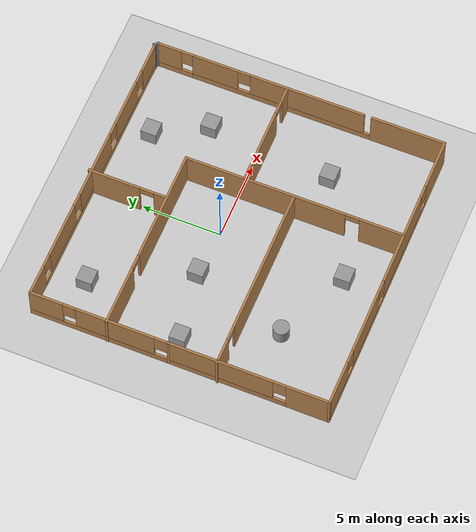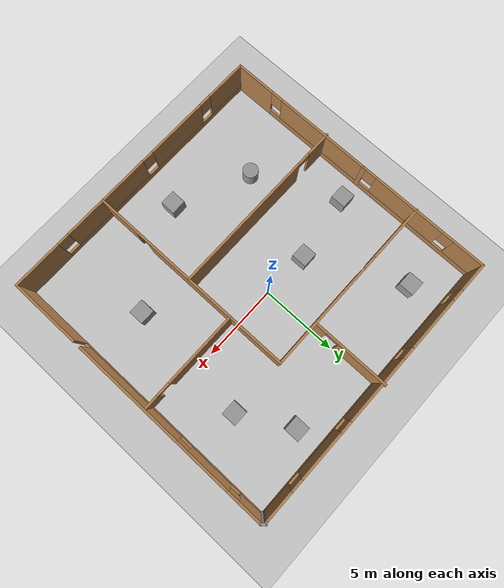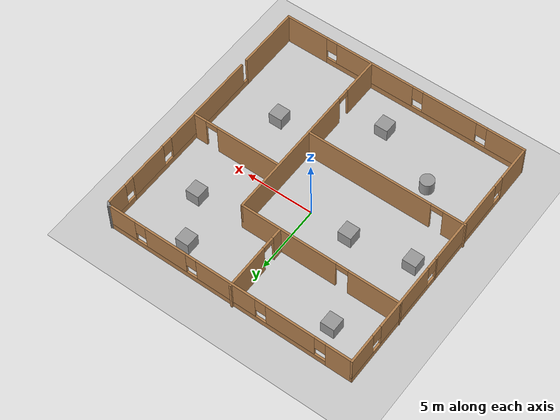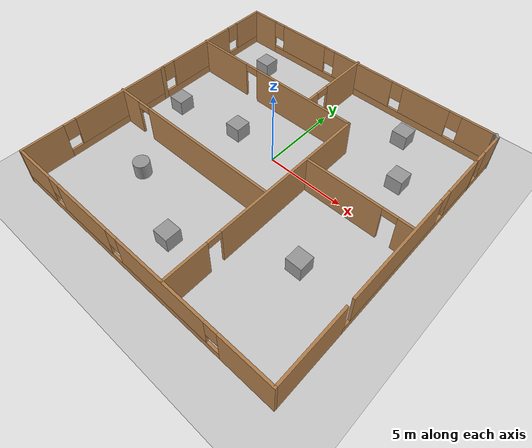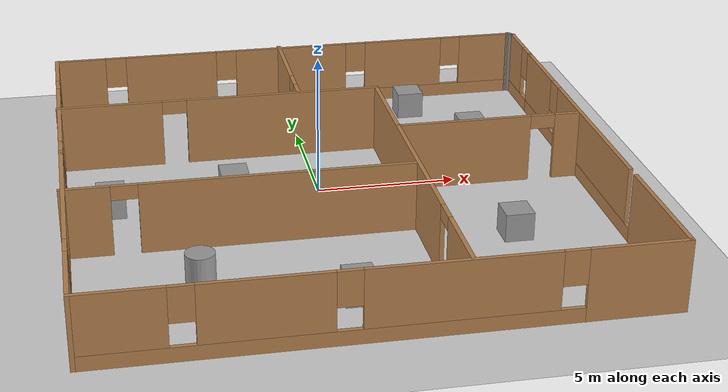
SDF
<sdf version="1.7">
 <world name="default">
  <light name="sun" type="directional">
   <pose>0 0 10 0 -0 0</pose>
   <diffuse>0.8 0.8 0.8 1</diffuse>
   <specular>0.2 0.2 0.2 1</specular>
   <attenuation>
    <range>1000</range>
    <constant>0.9</constant>
    <linear>0.01</linear>
    <quadratic>0.001</quadratic>
   </attenuation>
   <direction>-0.5 0.1 -0.9</direction>
   <spot><inner_angle>0</inner_angle><outer_angle>0</outer_angle><falloff>0</falloff></spot>
  </light>
  <model name="ground_plane">
   <static>1</static>
   <link name="link">
    <collision name="collision">
     <geometry><plane><normal>0 0 1</normal><size>100 100</size></plane></geometry>
     <surface>
      <contact><collide_bitmask>65535</collide_bitmask></contact>
      <friction><ode><mu>100</mu><mu2>50</mu2></ode></friction>
     </surface>
    </collision>
    <visual name="visual">
     <cast_shadows>0</cast_shadows>
     <geometry><plane><normal>0 0 1</normal><size>100 100</size></plane></geometry>
     <material>
      <script><uri>file://media/materials/scripts/gazebo.material</uri><name>Gazebo/Grey</name></script>
     </material>
    </visual>
   </link>
  </model>
  <gravity>0 0 -9.8</gravity>
  <magnetic_field>6e-06 2.3e-05 -4.2e-05</magnetic_field>
  <atmosphere type="adiabatic"/>
  <physics type="ode">
   <max_step_size>0.001</max_step_size>
   <real_time_factor>1</real_time_factor>
   <real_time_update_rate>1000</real_time_update_rate>
  </physics>
  <scene><ambient>0.4 0.4 0.4 1</ambient><background>0.7 0.7 0.7 1</background><shadows>1</shadows></scene>
  <audio><device>default</device></audio>
  <spherical_coordinates>
   <surface_model>EARTH_WGS84</surface_model>
   <latitude_deg>0</latitude_deg>
   <longitude_deg>0</longitude_deg>
   <elevation>0</elevation>
   <heading_deg>0</heading_deg>
  </spherical_coordinates>
  <model name="robotenvironment">
   <pose>0.259533 -1.08047 0 0 -0 0</pose>
   <link name="Wall_12">
    <collision name="Wall_12_Collision">
     <geometry><box><size>4.75 0.15 2.5</size></box></geometry>
     <pose>0 0 1.25 0 -0 0</pose>
    </collision>
    <visual name="Wall_12_Visual">
     <pose>0 0 1.25 0 -0 0</pose>
     <geometry><box><size>4.75 0.15 2.5</size></box></geometry>
     <material>
      <script><uri>file://media/materials/scripts/gazebo.material</uri><name>Gazebo/Wood</name></script>
      <ambient>1 1 1 1</ambient>
     </material>
     <meta><layer>0</layer></meta>
    </visual>
    <pose>9.33013 -7.11239 0 0 -0 -1.5708</pose>
   </link>
   <link name="Wall_13">
    <pose>0.030125 -9.41239 0 0 -0 3.14159</pose>
    <visual name="Wall_13_Visual_0">
     <pose>-7.73036 0 1.25 0 -0 0</pose>
     <geometry><box><size>3.28928 0.15 2.5</size></box></geometry>
     <material>
      <script><uri>file://media/materials/scripts/gazebo.material</uri><name>Gazebo/Wood</name></script>
      <ambient>1 1 1 1</ambient>
     </material>
     <meta><layer>0</layer></meta>
    </visual>
    <collision name="Wall_13_Collision_0">
     <geometry><box><size>3.28928 0.15 2.5</size></box></geometry>
     <pose>-7.73036 0 1.25 0 -0 0</pose>
    </collision>
    <visual name="Wall_13_Visual_1">
     <pose>1.64464 0 0.25 0 -0 0</pose>
     <geometry><box><size>15.4607 0.15 0.5</size></box></geometry>
     <material>
      <script><uri>file://media/materials/scripts/gazebo.material</uri><name>Gazebo/Wood</name></script>
      <ambient>1 1 1 1</ambient>
     </material>
     <meta><layer>0</layer></meta>
    </visual>
    <collision name="Wall_13_Collision_1">
     <geometry><box><size>15.4607 0.15 0.5</size></box></geometry>
     <pose>1.64464 0 0.25 0 -0 0</pose>
    </collision>
    <visual name="Wall_13_Visual_2">
     <pose>-2.24722 0 1.5 0 -0 0</pose>
     <geometry><box><size>6.077 0.15 2</size></box></geometry>
     <material>
      <script><uri>file://media/materials/scripts/gazebo.material</uri><name>Gazebo/Wood</name></script>
      <ambient>1 1 1 1</ambient>
     </material>
     <meta><layer>0</layer></meta>
    </visual>
    <collision name="Wall_13_Collision_2">
     <geometry><box><size>6.077 0.15 2</size></box></geometry>
     <pose>-2.24722 0 1.5 0 -0 0</pose>
    </collision>
    <visual name="Wall_13_Visual_3">
     <pose>3.65113 0 1.5 0 -0 0</pose>
     <geometry><box><size>4.1197 0.15 2</size></box></geometry>
     <material>
      <script><uri>file://media/materials/scripts/gazebo.material</uri><name>Gazebo/Wood</name></script>
      <ambient>1 1 1 1</ambient>
     </material>
     <meta><layer>0</layer></meta>
    </visual>
    <collision name="Wall_13_Collision_3">
     <geometry><box><size>4.1197 0.15 2</size></box></geometry>
     <pose>3.65113 0 1.5 0 -0 0</pose>
    </collision>
    <visual name="Wall_13_Visual_4">
     <pose>7.94299 0 1.5 0 -0 0</pose>
     <geometry><box><size>2.86402 0.15 2</size></box></geometry>
     <material>
      <script><uri>file://media/materials/scripts/gazebo.material</uri><name>Gazebo/Wood</name></script>
      <ambient>1 1 1 1</ambient>
     </material>
     <meta><layer>0</layer></meta>
    </visual>
    <collision name="Wall_13_Collision_4">
     <geometry><box><size>2.86402 0.15 2</size></box></geometry>
     <pose>7.94299 0 1.5 0 -0 0</pose>
    </collision>
    <visual name="Wall_13_Visual_5">
     <pose>-5.68572 0 1.9 0 -0 0</pose>
     <geometry><box><size>0.8 0.15 1.2</size></box></geometry>
     <material>
      <script><uri>file://media/materials/scripts/gazebo.material</uri><name>Gazebo/Wood</name></script>
      <ambient>1 1 1 1</ambient>
     </material>
     <meta><layer>0</layer></meta>
    </visual>
    <collision name="Wall_13_Collision_5">
     <geometry><box><size>0.8 0.15 1.2</size></box></geometry>
     <pose>-5.68572 0 1.9 0 -0 0</pose>
    </collision>
    <visual name="Wall_13_Visual_6">
     <pose>1.19128 0 1.9 0 -0 0</pose>
     <geometry><box><size>0.8 0.15 1.2</size></box></geometry>
     <material>
      <script><uri>file://media/materials/scripts/gazebo.material</uri><name>Gazebo/Wood</name></script>
      <ambient>1 1 1 1</ambient>
     </material>
     <meta><layer>0</layer></meta>
    </visual>
    <collision name="Wall_13_Collision_6">
     <geometry><box><size>0.8 0.15 1.2</size></box></geometry>
     <pose>1.19128 0 1.9 0 -0 0</pose>
    </collision>
    <visual name="Wall_13_Visual_7">
     <pose>6.11098 0 1.9 0 -0 0</pose>
     <geometry><box><size>0.8 0.15 1.2</size></box></geometry>
     <material>
      <script><uri>file://media/materials/scripts/gazebo.material</uri><name>Gazebo/Wood</name></script>
      <ambient>1 1 1 1</ambient>
     </material>
     <meta><layer>0</layer></meta>
    </visual>
    <collision name="Wall_13_Collision_7">
     <geometry><box><size>0.8 0.15 1.2</size></box></geometry>
     <pose>6.11098 0 1.9 0 -0 0</pose>
    </collision>
   </link>
   <link name="Wall_14">
    <pose>-9.26988 -4.48739 0 0 -0 1.5708</pose>
    <visual name="Wall_14_Visual_0">
     <pose>-3.63221 0 1.25 0 -0 0</pose>
     <geometry><box><size>2.73558 0.15 2.5</size></box></geometry>
     <material>
      <script><uri>file://media/materials/scripts/gazebo.material</uri><name>Gazebo/Wood</name></script>
      <ambient>1 1 1 1</ambient>
     </material>
     <meta><layer>0</layer></meta>
    </visual>
    <collision name="Wall_14_Collision_0">
     <geometry><box><size>2.73558 0.15 2.5</size></box></geometry>
     <pose>-3.63221 0 1.25 0 -0 0</pose>
    </collision>
    <visual name="Wall_14_Visual_1">
     <pose>1.36779 0 0.25 0 -0 0</pose>
     <geometry><box><size>7.26442 0.15 0.5</size></box></geometry>
     <material>
      <script><uri>file://media/materials/scripts/gazebo.material</uri><name>Gazebo/Wood</name></script>
      <ambient>1 1 1 1</ambient>
     </material>
     <meta><layer>0</layer></meta>
    </visual>
    <collision name="Wall_14_Collision_1">
     <geometry><box><size>7.26442 0.15 0.5</size></box></geometry>
     <pose>1.36779 0 0.25 0 -0 0</pose>
    </collision>
    <visual name="Wall_14_Visual_2">
     <pose>1.76779 0 1.5 0 -0 0</pose>
     <geometry><box><size>6.46442 0.15 2</size></box></geometry>
     <material>
      <script><uri>file://media/materials/scripts/gazebo.material</uri><name>Gazebo/Wood</name></script>
      <ambient>1 1 1 1</ambient>
     </material>
     <meta><layer>0</layer></meta>
    </visual>
    <collision name="Wall_14_Collision_2">
     <geometry><box><size>6.46442 0.15 2</size></box></geometry>
     <pose>1.76779 0 1.5 0 -0 0</pose>
    </collision>
    <visual name="Wall_14_Visual_3">
     <pose>-1.86442 0 1.9 0 -0 0</pose>
     <geometry><box><size>0.8 0.15 1.2</size></box></geometry>
     <material>
      <script><uri>file://media/materials/scripts/gazebo.material</uri><name>Gazebo/Wood</name></script>
      <ambient>1 1 1 1</ambient>
     </material>
     <meta><layer>0</layer></meta>
    </visual>
    <collision name="Wall_14_Collision_3">
     <geometry><box><size>0.8 0.15 1.2</size></box></geometry>
     <pose>-1.86442 0 1.9 0 -0 0</pose>
    </collision>
   </link>
   <link name="Wall_17">
    <pose>-9.26988 4.86261 0 0 -0 1.5708</pose>
    <visual name="Wall_17_Visual_0">
     <pose>-4.35421 0 1.25 0 -0 0</pose>
     <geometry><box><size>0.291583 0.15 2.5</size></box></geometry>
     <material>
      <script><uri>file://media/materials/scripts/gazebo.material</uri><name>Gazebo/Wood</name></script>
      <ambient>1 1 1 1</ambient>
     </material>
     <meta><layer>0</layer></meta>
    </visual>
    <collision name="Wall_17_Collision_0">
     <geometry><box><size>0.291583 0.15 2.5</size></box></geometry>
     <pose>-4.35421 0 1.25 0 -0 0</pose>
    </collision>
    <visual name="Wall_17_Visual_1">
     <pose>0.145791 0 0.25 0 -0 0</pose>
     <geometry><box><size>8.70842 0.15 0.5</size></box></geometry>
     <material>
      <script><uri>file://media/materials/scripts/gazebo.material</uri><name>Gazebo/Wood</name></script>
      <ambient>1 1 1 1</ambient>
     </material>
     <meta><layer>0</layer></meta>
    </visual>
    <collision name="Wall_17_Collision_1">
     <geometry><box><size>8.70842 0.15 0.5</size></box></geometry>
     <pose>0.145791 0 0.25 0 -0 0</pose>
    </collision>
    <visual name="Wall_17_Visual_2">
     <pose>-0.925367 0 1.5 0 -0 0</pose>
     <geometry><box><size>4.9661 0.15 2</size></box></geometry>
     <material>
      <script><uri>file://media/materials/scripts/gazebo.material</uri><name>Gazebo/Wood</name></script>
      <ambient>1 1 1 1</ambient>
     </material>
     <meta><layer>0</layer></meta>
    </visual>
    <collision name="Wall_17_Collision_2">
     <geometry><box><size>4.9661 0.15 2</size></box></geometry>
     <pose>-0.925367 0 1.5 0 -0 0</pose>
    </collision>
    <visual name="Wall_17_Visual_3">
     <pose>3.42884 0 1.5 0 -0 0</pose>
     <geometry><box><size>2.14232 0.15 2</size></box></geometry>
     <material>
      <script><uri>file://media/materials/scripts/gazebo.material</uri><name>Gazebo/Wood</name></script>
      <ambient>1 1 1 1</ambient>
     </material>
     <meta><layer>0</layer></meta>
    </visual>
    <collision name="Wall_17_Collision_3">
     <geometry><box><size>2.14232 0.15 2</size></box></geometry>
     <pose>3.42884 0 1.5 0 -0 0</pose>
    </collision>
    <visual name="Wall_17_Visual_4">
     <pose>-3.80842 0 1.9 0 -0 0</pose>
     <geometry><box><size>0.8 0.15 1.2</size></box></geometry>
     <material>
      <script><uri>file://media/materials/scripts/gazebo.material</uri><name>Gazebo/Wood</name></script>
      <ambient>1 1 1 1</ambient>
     </material>
     <meta><layer>0</layer></meta>
    </visual>
    <collision name="Wall_17_Collision_4">
     <geometry><box><size>0.8 0.15 1.2</size></box></geometry>
     <pose>-3.80842 0 1.9 0 -0 0</pose>
    </collision>
    <visual name="Wall_17_Visual_5">
     <pose>1.95768 0 1.9 0 -0 0</pose>
     <geometry><box><size>0.8 0.15 1.2</size></box></geometry>
     <material>
      <script><uri>file://media/materials/scripts/gazebo.material</uri><name>Gazebo/Wood</name></script>
      <ambient>1 1 1 1</ambient>
     </material>
     <meta><layer>0</layer></meta>
    </visual>
    <collision name="Wall_17_Collision_5">
     <geometry><box><size>0.8 0.15 1.2</size></box></geometry>
     <pose>1.95768 0 1.9 0 -0 0</pose>
    </collision>
   </link>
   <link name="Wall_18">
    <pose>-0.094875 9.28761 0 0 -0 0</pose>
    <visual name="Wall_18_Visual_0">
     <pose>-8.26764 0 1.25 0 -0 0</pose>
     <geometry><box><size>1.96472 0.15 2.5</size></box></geometry>
     <material>
      <script><uri>file://media/materials/scripts/gazebo.material</uri><name>Gazebo/Wood</name></script>
      <ambient>1 1 1 1</ambient>
     </material>
     <meta><layer>0</layer></meta>
    </visual>
    <collision name="Wall_18_Collision_0">
     <geometry><box><size>1.96472 0.15 2.5</size></box></geometry>
     <pose>-8.26764 0 1.25 0 -0 0</pose>
    </collision>
    <visual name="Wall_18_Visual_1">
     <pose>0.982359 0 0.25 0 -0 0</pose>
     <geometry><box><size>16.5353 0.15 0.5</size></box></geometry>
     <material>
      <script><uri>file://media/materials/scripts/gazebo.material</uri><name>Gazebo/Wood</name></script>
      <ambient>1 1 1 1</ambient>
     </material>
     <meta><layer>0</layer></meta>
    </visual>
    <collision name="Wall_18_Collision_1">
     <geometry><box><size>16.5353 0.15 0.5</size></box></geometry>
     <pose>0.982359 0 0.25 0 -0 0</pose>
    </collision>
    <visual name="Wall_18_Visual_2">
     <pose>-4.68993 0 1.5 0 -0 0</pose>
     <geometry><box><size>3.5907 0.15 2</size></box></geometry>
     <material>
      <script><uri>file://media/materials/scripts/gazebo.material</uri><name>Gazebo/Wood</name></script>
      <ambient>1 1 1 1</ambient>
     </material>
     <meta><layer>0</layer></meta>
    </visual>
    <collision name="Wall_18_Collision_2">
     <geometry><box><size>3.5907 0.15 2</size></box></geometry>
     <pose>-4.68993 0 1.5 0 -0 0</pose>
    </collision>
    <visual name="Wall_18_Visual_3">
     <pose>0.150418 0 1.5 0 -0 0</pose>
     <geometry><box><size>4.49 0.15 2</size></box></geometry>
     <material>
      <script><uri>file://media/materials/scripts/gazebo.material</uri><name>Gazebo/Wood</name></script>
      <ambient>1 1 1 1</ambient>
     </material>
     <meta><layer>0</layer></meta>
    </visual>
    <collision name="Wall_18_Collision_3">
     <geometry><box><size>4.49 0.15 2</size></box></geometry>
     <pose>0.150418 0 1.5 0 -0 0</pose>
    </collision>
    <visual name="Wall_18_Visual_4">
     <pose>4.77917 0 1.5 0 -0 0</pose>
     <geometry><box><size>3.1675 0.15 2</size></box></geometry>
     <material>
      <script><uri>file://media/materials/scripts/gazebo.material</uri><name>Gazebo/Wood</name></script>
      <ambient>1 1 1 1</ambient>
     </material>
     <meta><layer>0</layer></meta>
    </visual>
    <collision name="Wall_18_Collision_4">
     <geometry><box><size>3.1675 0.15 2</size></box></geometry>
     <pose>4.77917 0 1.5 0 -0 0</pose>
    </collision>
    <visual name="Wall_18_Visual_5">
     <pose>8.20646 0 1.5 0 -0 0</pose>
     <geometry><box><size>2.08708 0.15 2</size></box></geometry>
     <material>
      <script><uri>file://media/materials/scripts/gazebo.material</uri><name>Gazebo/Wood</name></script>
      <ambient>1 1 1 1</ambient>
     </material>
     <meta><layer>0</layer></meta>
    </visual>
    <collision name="Wall_18_Collision_5">
     <geometry><box><size>2.08708 0.15 2</size></box></geometry>
     <pose>8.20646 0 1.5 0 -0 0</pose>
    </collision>
    <visual name="Wall_18_Visual_6">
     <pose>-6.88528 0 1.9 0 -0 0</pose>
     <geometry><box><size>0.8 0.15 1.2</size></box></geometry>
     <material>
      <script><uri>file://media/materials/scripts/gazebo.material</uri><name>Gazebo/Wood</name></script>
      <ambient>1 1 1 1</ambient>
     </material>
     <meta><layer>0</layer></meta>
    </visual>
    <collision name="Wall_18_Collision_6">
     <geometry><box><size>0.8 0.15 1.2</size></box></geometry>
     <pose>-6.88528 0 1.9 0 -0 0</pose>
    </collision>
    <visual name="Wall_18_Visual_7">
     <pose>-2.49458 0 1.9 0 -0 0</pose>
     <geometry><box><size>0.8 0.15 1.2</size></box></geometry>
     <material>
      <script><uri>file://media/materials/scripts/gazebo.material</uri><name>Gazebo/Wood</name></script>
      <ambient>1 1 1 1</ambient>
     </material>
     <meta><layer>0</layer></meta>
    </visual>
    <collision name="Wall_18_Collision_7">
     <geometry><box><size>0.8 0.15 1.2</size></box></geometry>
     <pose>-2.49458 0 1.9 0 -0 0</pose>
    </collision>
    <visual name="Wall_18_Visual_8">
     <pose>2.79542 0 1.9 0 -0 0</pose>
     <geometry><box><size>0.8 0.15 1.2</size></box></geometry>
     <material>
      <script><uri>file://media/materials/scripts/gazebo.material</uri><name>Gazebo/Wood</name></script>
      <ambient>1 1 1 1</ambient>
     </material>
     <meta><layer>0</layer></meta>
    </visual>
    <collision name="Wall_18_Collision_8">
     <geometry><box><size>0.8 0.15 1.2</size></box></geometry>
     <pose>2.79542 0 1.9 0 -0 0</pose>
    </collision>
    <visual name="Wall_18_Visual_9">
     <pose>6.76292 0 1.9 0 -0 0</pose>
     <geometry><box><size>0.8 0.15 1.2</size></box></geometry>
     <material>
      <script><uri>file://media/materials/scripts/gazebo.material</uri><name>Gazebo/Wood</name></script>
      <ambient>1 1 1 1</ambient>
     </material>
     <meta><layer>0</layer></meta>
    </visual>
    <collision name="Wall_18_Collision_9">
     <geometry><box><size>0.8 0.15 1.2</size></box></geometry>
     <pose>6.76292 0 1.9 0 -0 0</pose>
    </collision>
   </link>
   <link name="Wall_19">
    <collision name="Wall_19_Collision">
     <geometry><box><size>0.25 0.15 2.5</size></box></geometry>
     <pose>0 0 1.25 0 -0 0</pose>
    </collision>
    <visual name="Wall_19_Visual">
     <pose>0 0 1.25 0 -0 0</pose>
     <geometry><box><size>0.25 0.15 2.5</size></box></geometry>
     <material>
      <script><uri>file://media/materials/scripts/gazebo.material</uri><name>Gazebo/Grey</name></script>
      <ambient>1 1 1 1</ambient>
     </material>
     <meta><layer>0</layer></meta>
    </visual>
    <pose>9.12343 9.31261 0 0 -0 0.523599</pose>
   </link>
   <link name="Wall_20">
    <collision name="Wall_20_Collision">
     <geometry><box><size>0.408261 0.15 2.5</size></box></geometry>
     <pose>0 0 1.25 0 -0 0</pose>
    </collision>
    <visual name="Wall_20_Visual">
     <pose>0 0 1.25 0 -0 0</pose>
     <geometry><box><size>0.408261 0.15 2.5</size></box></geometry>
     <material>
      <script><uri>file://media/materials/scripts/gazebo.material</uri><name>Gazebo/Grey</name></script>
      <ambient>1 1 1 1</ambient>
     </material>
     <meta><layer>0</layer></meta>
    </visual>
    <pose>9.24843 9.23761 0 0 -0 -0.885783</pose>
   </link>
   <link name="Wall_29">
    <pose>-3.38276 4.43979 0 0 -0 0</pose>
    <visual name="Wall_29_Visual_0">
     <pose>-4.0715 0 1.25 0 -0 0</pose>
     <geometry><box><size>3.857 0.15 2.5</size></box></geometry>
     <material>
      <script><uri>file://media/materials/scripts/gazebo.material</uri><name>Gazebo/Wood</name></script>
      <ambient>1 1 1 1</ambient>
     </material>
     <meta><layer>0</layer></meta>
    </visual>
    <collision name="Wall_29_Collision_0">
     <geometry><box><size>3.857 0.15 2.5</size></box></geometry>
     <pose>-4.0715 0 1.25 0 -0 0</pose>
    </collision>
    <visual name="Wall_29_Visual_1">
     <pose>2.3785 0 1.25 0 -0 0</pose>
     <geometry><box><size>7.243 0.15 2.5</size></box></geometry>
     <material>
      <script><uri>file://media/materials/scripts/gazebo.material</uri><name>Gazebo/Wood</name></script>
      <ambient>1 1 1 1</ambient>
     </material>
     <meta><layer>0</layer></meta>
    </visual>
    <collision name="Wall_29_Collision_1">
     <geometry><box><size>7.243 0.15 2.5</size></box></geometry>
     <pose>2.3785 0 1.25 0 -0 0</pose>
    </collision>
    <visual name="Wall_29_Visual_2">
     <pose>-1.693 0 2.25 0 -0 0</pose>
     <geometry><box><size>0.9 0.15 0.5</size></box></geometry>
     <material>
      <script><uri>file://media/materials/scripts/gazebo.material</uri><name>Gazebo/Wood</name></script>
      <ambient>1 1 1 1</ambient>
     </material>
     <meta><layer>0</layer></meta>
    </visual>
    <collision name="Wall_29_Collision_2">
     <geometry><box><size>0.9 0.15 0.5</size></box></geometry>
     <pose>-1.693 0 2.25 0 -0 0</pose>
    </collision>
   </link>
   <link name="Wall_30">
    <pose>2.54224 -2.48521 0 0 -0 -1.5708</pose>
    <visual name="Wall_30_Visual_0">
     <pose>-1.87105 0 1.25 0 -0 0</pose>
     <geometry><box><size>10.2579 0.15 2.5</size></box></geometry>
     <material>
      <script><uri>file://media/materials/scripts/gazebo.material</uri><name>Gazebo/Wood</name></script>
      <ambient>1 1 1 1</ambient>
     </material>
     <meta><layer>0</layer></meta>
    </visual>
    <collision name="Wall_30_Collision_0">
     <geometry><box><size>10.2579 0.15 2.5</size></box></geometry>
     <pose>-1.87105 0 1.25 0 -0 0</pose>
    </collision>
    <visual name="Wall_30_Visual_1">
     <pose>5.57895 0 1.25 0 -0 0</pose>
     <geometry><box><size>2.8421 0.15 2.5</size></box></geometry>
     <material>
      <script><uri>file://media/materials/scripts/gazebo.material</uri><name>Gazebo/Wood</name></script>
      <ambient>1 1 1 1</ambient>
     </material>
     <meta><layer>0</layer></meta>
    </visual>
    <collision name="Wall_30_Collision_1">
     <geometry><box><size>2.8421 0.15 2.5</size></box></geometry>
     <pose>5.57895 0 1.25 0 -0 0</pose>
    </collision>
    <visual name="Wall_30_Visual_2">
     <pose>3.7079 0 2.25 0 -0 0</pose>
     <geometry><box><size>0.9 0.15 0.5</size></box></geometry>
     <material>
      <script><uri>file://media/materials/scripts/gazebo.material</uri><name>Gazebo/Wood</name></script>
      <ambient>1 1 1 1</ambient>
     </material>
     <meta><layer>0</layer></meta>
    </visual>
    <collision name="Wall_30_Collision_2">
     <geometry><box><size>0.9 0.15 0.5</size></box></geometry>
     <pose>3.7079 0 2.25 0 -0 0</pose>
    </collision>
   </link>
   <link name="Wall_32">
    <pose>-3.43566 -2.49011 0 0 -0 0</pose>
    <visual name="Wall_32_Visual_0">
     <pose>-5.15595 0 1.25 0 -0 0</pose>
     <geometry><box><size>1.6881 0.15 2.5</size></box></geometry>
     <material>
      <script><uri>file://media/materials/scripts/gazebo.material</uri><name>Gazebo/Wood</name></script>
      <ambient>1 1 1 1</ambient>
     </material>
     <meta><layer>0</layer></meta>
    </visual>
    <collision name="Wall_32_Collision_0">
     <geometry><box><size>1.6881 0.15 2.5</size></box></geometry>
     <pose>-5.15595 0 1.25 0 -0 0</pose>
    </collision>
    <visual name="Wall_32_Visual_1">
     <pose>1.29405 0 1.25 0 -0 0</pose>
     <geometry><box><size>9.4119 0.15 2.5</size></box></geometry>
     <material>
      <script><uri>file://media/materials/scripts/gazebo.material</uri><name>Gazebo/Wood</name></script>
      <ambient>1 1 1 1</ambient>
     </material>
     <meta><layer>0</layer></meta>
    </visual>
    <collision name="Wall_32_Collision_1">
     <geometry><box><size>9.4119 0.15 2.5</size></box></geometry>
     <pose>1.29405 0 1.25 0 -0 0</pose>
    </collision>
    <visual name="Wall_32_Visual_2">
     <pose>-3.8619 0 2.25 0 -0 0</pose>
     <geometry><box><size>0.9 0.15 0.5</size></box></geometry>
     <material>
      <script><uri>file://media/materials/scripts/gazebo.material</uri><name>Gazebo/Wood</name></script>
      <ambient>1 1 1 1</ambient>
     </material>
     <meta><layer>0</layer></meta>
    </visual>
    <collision name="Wall_32_Collision_2">
     <geometry><box><size>0.9 0.15 0.5</size></box></geometry>
     <pose>-3.8619 0 2.25 0 -0 0</pose>
    </collision>
   </link>
   <link name="Wall_34">
    <pose>5.89474 0.683891 0 0 -0 0</pose>
    <visual name="Wall_34_Visual_0">
     <pose>-0.9175 0 1.25 0 -0 0</pose>
     <geometry><box><size>4.915 0.15 2.5</size></box></geometry>
     <material>
      <script><uri>file://media/materials/scripts/gazebo.material</uri><name>Gazebo/Wood</name></script>
      <ambient>1 1 1 1</ambient>
     </material>
     <meta><layer>0</layer></meta>
    </visual>
    <collision name="Wall_34_Collision_0">
     <geometry><box><size>4.915 0.15 2.5</size></box></geometry>
     <pose>-0.9175 0 1.25 0 -0 0</pose>
    </collision>
    <visual name="Wall_34_Visual_1">
     <pose>2.9075 0 1.25 0 -0 0</pose>
     <geometry><box><size>0.935 0.15 2.5</size></box></geometry>
     <material>
      <script><uri>file://media/materials/scripts/gazebo.material</uri><name>Gazebo/Wood</name></script>
      <ambient>1 1 1 1</ambient>
     </material>
     <meta><layer>0</layer></meta>
    </visual>
    <collision name="Wall_34_Collision_1">
     <geometry><box><size>0.935 0.15 2.5</size></box></geometry>
     <pose>2.9075 0 1.25 0 -0 0</pose>
    </collision>
    <visual name="Wall_34_Visual_2">
     <pose>1.99 0 2.25 0 -0 0</pose>
     <geometry><box><size>0.9 0.15 0.5</size></box></geometry>
     <material>
      <script><uri>file://media/materials/scripts/gazebo.material</uri><name>Gazebo/Wood</name></script>
      <ambient>1 1 1 1</ambient>
     </material>
     <meta><layer>0</layer></meta>
    </visual>
    <collision name="Wall_34_Collision_2">
     <geometry><box><size>0.9 0.15 0.5</size></box></geometry>
     <pose>1.99 0 2.25 0 -0 0</pose>
    </collision>
   </link>
   <link name="Wall_36">
    <pose>-0.420558 6.98739 0 0 -0 -1.5708</pose>
    <visual name="Wall_36_Visual_0">
     <pose>-0.836 0 1.25 0 -0 0</pose>
     <geometry><box><size>3.328 0.15 2.5</size></box></geometry>
     <material>
      <script><uri>file://media/materials/scripts/gazebo.material</uri><name>Gazebo/Wood</name></script>
      <ambient>1 1 1 1</ambient>
     </material>
     <meta><layer>0</layer></meta>
    </visual>
    <collision name="Wall_36_Collision_0">
     <geometry><box><size>3.328 0.15 2.5</size></box></geometry>
     <pose>-0.836 0 1.25 0 -0 0</pose>
    </collision>
    <visual name="Wall_36_Visual_1">
     <pose>2.114 0 1.25 0 -0 0</pose>
     <geometry><box><size>0.772 0.15 2.5</size></box></geometry>
     <material>
      <script><uri>file://media/materials/scripts/gazebo.material</uri><name>Gazebo/Wood</name></script>
      <ambient>1 1 1 1</ambient>
     </material>
     <meta><layer>0</layer></meta>
    </visual>
    <collision name="Wall_36_Collision_1">
     <geometry><box><size>0.772 0.15 2.5</size></box></geometry>
     <pose>2.114 0 1.25 0 -0 0</pose>
    </collision>
    <visual name="Wall_36_Visual_2">
     <pose>1.278 0 2.25 0 -0 0</pose>
     <geometry><box><size>0.9 0.15 0.5</size></box></geometry>
     <material>
      <script><uri>file://media/materials/scripts/gazebo.material</uri><name>Gazebo/Wood</name></script>
      <ambient>1 1 1 1</ambient>
     </material>
     <meta><layer>0</layer></meta>
    </visual>
    <collision name="Wall_36_Collision_2">
     <geometry><box><size>0.9 0.15 0.5</size></box></geometry>
     <pose>1.278 0 2.25 0 -0 0</pose>
    </collision>
   </link>
   <link name="Wall_4">
    <pose>9.33013 0.987609 0 0 -0 1.5708</pose>
    <visual name="Wall_4_Visual_0">
     <pose>0 0 0.25 0 -0 0</pose>
     <geometry><box><size>11.75 0.15 0.5</size></box></geometry>
     <material>
      <script><uri>file://media/materials/scripts/gazebo.material</uri><name>Gazebo/Wood</name></script>
      <ambient>1 1 1 1</ambient>
     </material>
     <meta><layer>0</layer></meta>
    </visual>
    <collision name="Wall_4_Collision_0">
     <geometry><box><size>11.75 0.15 0.5</size></box></geometry>
     <pose>0 0 0.25 0 -0 0</pose>
    </collision>
    <visual name="Wall_4_Visual_1">
     <pose>-1.59977 0 1.5 0 -0 0</pose>
     <geometry><box><size>7.3995 0.15 2</size></box></geometry>
     <material>
      <script><uri>file://media/materials/scripts/gazebo.material</uri><name>Gazebo/Wood</name></script>
      <ambient>1 1 1 1</ambient>
     </material>
     <meta><layer>0</layer></meta>
    </visual>
    <collision name="Wall_4_Collision_1">
     <geometry><box><size>7.3995 0.15 2</size></box></geometry>
     <pose>-1.59977 0 1.5 0 -0 0</pose>
    </collision>
    <visual name="Wall_4_Visual_2">
     <pose>4.38749 0 1.5 0 -0 0</pose>
     <geometry><box><size>2.97502 0.15 2</size></box></geometry>
     <material>
      <script><uri>file://media/materials/scripts/gazebo.material</uri><name>Gazebo/Wood</name></script>
      <ambient>1 1 1 1</ambient>
     </material>
     <meta><layer>0</layer></meta>
    </visual>
    <collision name="Wall_4_Collision_2">
     <geometry><box><size>2.97502 0.15 2</size></box></geometry>
     <pose>4.38749 0 1.5 0 -0 0</pose>
    </collision>
    <visual name="Wall_4_Visual_3">
     <pose>2.49998 0 1.9 0 -0 0</pose>
     <geometry><box><size>0.8 0.15 1.2</size></box></geometry>
     <material>
      <script><uri>file://media/materials/scripts/gazebo.material</uri><name>Gazebo/Wood</name></script>
      <ambient>1 1 1 1</ambient>
     </material>
     <meta><layer>0</layer></meta>
    </visual>
    <collision name="Wall_4_Collision_3">
     <geometry><box><size>0.8 0.15 1.2</size></box></geometry>
     <pose>2.49998 0 1.9 0 -0 0</pose>
    </collision>
   </link>
   <link name="Wall_6">
    <pose>9.33013 7.96261 0 0 -0 1.5708</pose>
    <visual name="Wall_6_Visual_0">
     <pose>-1.21101 0 1.25 0 -0 0</pose>
     <geometry><box><size>0.077983 0.15 2.5</size></box></geometry>
     <material>
      <script><uri>file://media/materials/scripts/gazebo.material</uri><name>Gazebo/Wood</name></script>
      <ambient>1 1 1 1</ambient>
     </material>
     <meta><layer>0</layer></meta>
    </visual>
    <collision name="Wall_6_Collision_0">
     <geometry><box><size>0.077983 0.15 2.5</size></box></geometry>
     <pose>-1.21101 0 1.25 0 -0 0</pose>
    </collision>
    <visual name="Wall_6_Visual_1">
     <pose>0.038991 0 0.25 0 -0 0</pose>
     <geometry><box><size>2.42202 0.15 0.5</size></box></geometry>
     <material>
      <script><uri>file://media/materials/scripts/gazebo.material</uri><name>Gazebo/Wood</name></script>
      <ambient>1 1 1 1</ambient>
     </material>
     <meta><layer>0</layer></meta>
    </visual>
    <collision name="Wall_6_Collision_1">
     <geometry><box><size>2.42202 0.15 0.5</size></box></geometry>
     <pose>0.038991 0 0.25 0 -0 0</pose>
    </collision>
    <visual name="Wall_6_Visual_2">
     <pose>0.438991 0 1.5 0 -0 0</pose>
     <geometry><box><size>1.62202 0.15 2</size></box></geometry>
     <material>
      <script><uri>file://media/materials/scripts/gazebo.material</uri><name>Gazebo/Wood</name></script>
      <ambient>1 1 1 1</ambient>
     </material>
     <meta><layer>0</layer></meta>
    </visual>
    <collision name="Wall_6_Collision_2">
     <geometry><box><size>1.62202 0.15 2</size></box></geometry>
     <pose>0.438991 0 1.5 0 -0 0</pose>
    </collision>
    <visual name="Wall_6_Visual_3">
     <pose>-0.772017 0 1.9 0 -0 0</pose>
     <geometry><box><size>0.8 0.15 1.2</size></box></geometry>
     <material>
      <script><uri>file://media/materials/scripts/gazebo.material</uri><name>Gazebo/Wood</name></script>
      <ambient>1 1 1 1</ambient>
     </material>
     <meta><layer>0</layer></meta>
    </visual>
    <collision name="Wall_6_Collision_3">
     <geometry><box><size>0.8 0.15 1.2</size></box></geometry>
     <pose>-0.772017 0 1.9 0 -0 0</pose>
    </collision>
   </link>
   <static>1</static>
  </model>
  <model name="obstacles">
   <link name="link_0">
    <inertial>
     <mass>1</mass>
     <inertia>
      <ixx>0.166667</ixx>
      <ixy>0</ixy>
      <ixz>0</ixz>
      <iyy>0.166667</iyy>
      <iyz>0</iyz>
      <izz>0.166667</izz>
     </inertia>
    </inertial>
    <pose>-5.4725 6.38018 0 0 -0 0</pose>
    <visual name="visual">
     <geometry><box><size>1 1 1</size></box></geometry>
     <material>
      <lighting>1</lighting>
      <script><uri>file://media/materials/scripts/gazebo.material</uri><name>Gazebo/Grey</name></script>
      <shader type="pixel"/>
     </material>
    </visual>
    <collision name="collision">
     <geometry><box><size>1 1 1</size></box></geometry>
     <surface>
      <friction>
       <ode><mu>1</mu><mu2>1</mu2><fdir1>0 0 0</fdir1><slip1>0</slip1><slip2>0</slip2></ode>
       <torsional>
        <coefficient>1</coefficient>
        <patch_radius>0</patch_radius>
        <surface_radius>0</surface_radius>
        <use_patch_radius>1</use_patch_radius>
        <ode><slip>0</slip></ode>
       </torsional>
      </friction>
      <bounce><restitution_coefficient>0</restitution_coefficient><threshold>1e+06</threshold></bounce>
      <contact>
       <collide_without_contact>0</collide_without_contact>
       <collide_without_contact_bitmask>1</collide_without_contact_bitmask>
       <collide_bitmask>1</collide_bitmask>
       <ode>
        <soft_cfm>0</soft_cfm>
        <soft_erp>0.2</soft_erp>
        <kp>1e+13</kp>
        <kd>1</kd>
        <max_vel>0.01</max_vel>
        <min_depth>0</min_depth>
       </ode>
       <bullet>
        <split_impulse>1</split_impulse>
        <split_impulse_penetration_threshold>-0.01</split_impulse_penetration_threshold>
        <soft_cfm>0</soft_cfm>
        <soft_erp>0.2</soft_erp>
        <kp>1e+13</kp>
        <kd>1</kd>
       </bullet>
      </contact>
     </surface>
    </collision>
   </link>
   <link name="link_1">
    <inertial>
     <mass>1</mass>
     <inertia>
      <ixx>0.166667</ixx>
      <ixy>0</ixy>
      <ixz>0</ixz>
      <iyy>0.166667</iyy>
      <iyz>0</iyz>
      <izz>0.166667</izz>
     </inertia>
    </inertial>
    <pose>-2.51826 0.536891 0 0 -0 0</pose>
    <visual name="visual">
     <geometry><box><size>1 1 1</size></box></geometry>
     <material>
      <lighting>1</lighting>
      <script><uri>file://media/materials/scripts/gazebo.material</uri><name>Gazebo/Grey</name></script>
      <shader type="pixel"/>
     </material>
    </visual>
    <collision name="collision">
     <geometry><box><size>1 1 1</size></box></geometry>
     <surface>
      <friction>
       <ode><mu>1</mu><mu2>1</mu2><fdir1>0 0 0</fdir1><slip1>0</slip1><slip2>0</slip2></ode>
       <torsional>
        <coefficient>1</coefficient>
        <patch_radius>0</patch_radius>
        <surface_radius>0</surface_radius>
        <use_patch_radius>1</use_patch_radius>
        <ode><slip>0</slip></ode>
       </torsional>
      </friction>
      <bounce><restitution_coefficient>0</restitution_coefficient><threshold>1e+06</threshold></bounce>
      <contact>
       <collide_without_contact>0</collide_without_contact>
       <collide_without_contact_bitmask>1</collide_without_contact_bitmask>
       <collide_bitmask>1</collide_bitmask>
       <ode>
        <soft_cfm>0</soft_cfm>
        <soft_erp>0.2</soft_erp>
        <kp>1e+13</kp>
        <kd>1</kd>
        <max_vel>0.01</max_vel>
        <min_depth>0</min_depth>
       </ode>
       <bullet>
        <split_impulse>1</split_impulse>
        <split_impulse_penetration_threshold>-0.01</split_impulse_penetration_threshold>
        <soft_cfm>0</soft_cfm>
        <soft_erp>0.2</soft_erp>
        <kp>1e+13</kp>
        <kd>1</kd>
       </bullet>
      </contact>
     </surface>
    </collision>
   </link>
   <link name="link_2">
    <inertial>
     <mass>1</mass>
     <inertia>
      <ixx>0.166667</ixx>
      <ixy>0</ixy>
      <ixz>0</ixz>
      <iyy>0.166667</iyy>
      <iyz>0</iyz>
      <izz>0.166667</izz>
     </inertia>
    </inertial>
    <pose>-6.91283 -0.153834 0 0 -0 0</pose>
    <visual name="visual">
     <geometry><box><size>1 1 1</size></box></geometry>
     <material>
      <lighting>1</lighting>
      <script><uri>file://media/materials/scripts/gazebo.material</uri><name>Gazebo/Grey</name></script>
      <shader type="pixel"/>
     </material>
    </visual>
    <collision name="collision">
     <geometry><box><size>1 1 1</size></box></geometry>
     <surface>
      <friction>
       <ode><mu>1</mu><mu2>1</mu2><fdir1>0 0 0</fdir1><slip1>0</slip1><slip2>0</slip2></ode>
       <torsional>
        <coefficient>1</coefficient>
        <patch_radius>0</patch_radius>
        <surface_radius>0</surface_radius>
        <use_patch_radius>1</use_patch_radius>
        <ode><slip>0</slip></ode>
       </torsional>
      </friction>
      <bounce><restitution_coefficient>0</restitution_coefficient><threshold>1e+06</threshold></bounce>
      <contact>
       <collide_without_contact>0</collide_without_contact>
       <collide_without_contact_bitmask>1</collide_without_contact_bitmask>
       <collide_bitmask>1</collide_bitmask>
       <ode>
        <soft_cfm>0</soft_cfm>
        <soft_erp>0.2</soft_erp>
        <kp>1e+13</kp>
        <kd>1</kd>
        <max_vel>0.01</max_vel>
        <min_depth>0</min_depth>
       </ode>
       <bullet>
        <split_impulse>1</split_impulse>
        <split_impulse_penetration_threshold>-0.01</split_impulse_penetration_threshold>
        <soft_cfm>0</soft_cfm>
        <soft_erp>0.2</soft_erp>
        <kp>1e+13</kp>
        <kd>1</kd>
       </bullet>
      </contact>
     </surface>
    </collision>
   </link>
   <link name="link_3">
    <inertial>
     <mass>1</mass>
     <inertia><ixx>0.145833</ixx><ixy>0</ixy><ixz>0</ixz><iyy>0.145833</iyy><iyz>0</iyz><izz>0.125</izz></inertia>
    </inertial>
    <pose>-4.33435 -5.48816 0 0 -0 0</pose>
    <visual name="visual">
     <geometry><cylinder><radius>0.5</radius><length>1</length></cylinder></geometry>
     <material>
      <lighting>1</lighting>
      <script><uri>file://media/materials/scripts/gazebo.material</uri><name>Gazebo/Grey</name></script>
      <shader type="pixel"/>
     </material>
    </visual>
    <collision name="collision">
     <geometry><cylinder><radius>0.5</radius><length>1</length></cylinder></geometry>
     <surface>
      <friction>
       <ode><mu>1</mu><mu2>1</mu2><fdir1>0 0 0</fdir1><slip1>0</slip1><slip2>0</slip2></ode>
       <torsional>
        <coefficient>1</coefficient>
        <patch_radius>0</patch_radius>
        <surface_radius>0</surface_radius>
        <use_patch_radius>1</use_patch_radius>
        <ode><slip>0</slip></ode>
       </torsional>
      </friction>
      <bounce><restitution_coefficient>0</restitution_coefficient><threshold>1e+06</threshold></bounce>
      <contact>
       <collide_without_contact>0</collide_without_contact>
       <collide_without_contact_bitmask>1</collide_without_contact_bitmask>
       <collide_bitmask>1</collide_bitmask>
       <ode>
        <soft_cfm>0</soft_cfm>
        <soft_erp>0.2</soft_erp>
        <kp>1e+13</kp>
        <kd>1</kd>
        <max_vel>0.01</max_vel>
        <min_depth>0</min_depth>
       </ode>
       <bullet>
        <split_impulse>1</split_impulse>
        <split_impulse_penetration_threshold>-0.01</split_impulse_penetration_threshold>
        <soft_cfm>0</soft_cfm>
        <soft_erp>0.2</soft_erp>
        <kp>1e+13</kp>
        <kd>1</kd>
       </bullet>
      </contact>
     </surface>
    </collision>
   </link>
   <link name="link_4">
    <inertial>
     <mass>1</mass>
     <inertia>
      <ixx>0.166667</ixx>
      <ixy>0</ixy>
      <ixz>0</ixz>
      <iyy>0.166667</iyy>
      <iyz>0</iyz>
      <izz>0.166667</izz>
     </inertia>
    </inertial>
    <pose>0.398778 -7.58436 0 0 -0 0</pose>
    <visual name="visual">
     <geometry><box><size>1 1 1</size></box></geometry>
     <material>
      <lighting>1</lighting>
      <script><uri>file://media/materials/scripts/gazebo.material</uri><name>Gazebo/Grey</name></script>
      <shader type="pixel"/>
     </material>
    </visual>
    <collision name="collision">
     <geometry><box><size>1 1 1</size></box></geometry>
     <surface>
      <friction>
       <ode><mu>1</mu><mu2>1</mu2><fdir1>0 0 0</fdir1><slip1>0</slip1><slip2>0</slip2></ode>
       <torsional>
        <coefficient>1</coefficient>
        <patch_radius>0</patch_radius>
        <surface_radius>0</surface_radius>
        <use_patch_radius>1</use_patch_radius>
        <ode><slip>0</slip></ode>
       </torsional>
      </friction>
      <bounce><restitution_coefficient>0</restitution_coefficient><threshold>1e+06</threshold></bounce>
      <contact>
       <collide_without_contact>0</collide_without_contact>
       <collide_without_contact_bitmask>1</collide_without_contact_bitmask>
       <collide_bitmask>1</collide_bitmask>
       <ode>
        <soft_cfm>0</soft_cfm>
        <soft_erp>0.2</soft_erp>
        <kp>1e+13</kp>
        <kd>1</kd>
        <max_vel>0.01</max_vel>
        <min_depth>0</min_depth>
       </ode>
       <bullet>
        <split_impulse>1</split_impulse>
        <split_impulse_penetration_threshold>-0.01</split_impulse_penetration_threshold>
        <soft_cfm>0</soft_cfm>
        <soft_erp>0.2</soft_erp>
        <kp>1e+13</kp>
        <kd>1</kd>
       </bullet>
      </contact>
     </surface>
    </collision>
   </link>
   <link name="link_5">
    <inertial>
     <mass>1</mass>
     <inertia>
      <ixx>0.166667</ixx>
      <ixy>0</ixy>
      <ixz>0</ixz>
      <iyy>0.166667</iyy>
      <iyz>0</iyz>
      <izz>0.166667</izz>
     </inertia>
    </inertial>
    <pose>6.48353 -4.24805 0 0 -0 0</pose>
    <visual name="visual">
     <geometry><box><size>1 1 1</size></box></geometry>
     <material>
      <lighting>1</lighting>
      <script><uri>file://media/materials/scripts/gazebo.material</uri><name>Gazebo/Grey</name></script>
      <shader type="pixel"/>
     </material>
    </visual>
    <collision name="collision">
     <geometry><box><size>1 1 1</size></box></geometry>
     <surface>
      <friction>
       <ode><mu>1</mu><mu2>1</mu2><fdir1>0 0 0</fdir1><slip1>0</slip1><slip2>0</slip2></ode>
       <torsional>
        <coefficient>1</coefficient>
        <patch_radius>0</patch_radius>
        <surface_radius>0</surface_radius>
        <use_patch_radius>1</use_patch_radius>
        <ode><slip>0</slip></ode>
       </torsional>
      </friction>
      <bounce><restitution_coefficient>0</restitution_coefficient><threshold>1e+06</threshold></bounce>
      <contact>
       <collide_without_contact>0</collide_without_contact>
       <collide_without_contact_bitmask>1</collide_without_contact_bitmask>
       <collide_bitmask>1</collide_bitmask>
       <ode>
        <soft_cfm>0</soft_cfm>
        <soft_erp>0.2</soft_erp>
        <kp>1e+13</kp>
        <kd>1</kd>
        <max_vel>0.01</max_vel>
        <min_depth>0</min_depth>
       </ode>
       <bullet>
        <split_impulse>1</split_impulse>
        <split_impulse_penetration_threshold>-0.01</split_impulse_penetration_threshold>
        <soft_cfm>0</soft_cfm>
        <soft_erp>0.2</soft_erp>
        <kp>1e+13</kp>
        <kd>1</kd>
       </bullet>
      </contact>
     </surface>
    </collision>
   </link>
   <link name="link_6">
    <inertial>
     <mass>1</mass>
     <inertia>
      <ixx>0.166667</ixx>
      <ixy>0</ixy>
      <ixz>0</ixz>
      <iyy>0.166667</iyy>
      <iyz>0</iyz>
      <izz>0.166667</izz>
     </inertia>
    </inertial>
    <pose>7.04738 3.68451 0 0 -0 0</pose>
    <visual name="visual">
     <geometry><box><size>1 1 1</size></box></geometry>
     <material>
      <lighting>1</lighting>
      <script><uri>file://media/materials/scripts/gazebo.material</uri><name>Gazebo/Grey</name></script>
      <shader type="pixel"/>
     </material>
    </visual>
    <collision name="collision">
     <geometry><box><size>1 1 1</size></box></geometry>
     <surface>
      <friction>
       <ode><mu>1</mu><mu2>1</mu2><fdir1>0 0 0</fdir1><slip1>0</slip1><slip2>0</slip2></ode>
       <torsional>
        <coefficient>1</coefficient>
        <patch_radius>0</patch_radius>
        <surface_radius>0</surface_radius>
        <use_patch_radius>1</use_patch_radius>
        <ode><slip>0</slip></ode>
       </torsional>
      </friction>
      <bounce><restitution_coefficient>0</restitution_coefficient><threshold>1e+06</threshold></bounce>
      <contact>
       <collide_without_contact>0</collide_without_contact>
       <collide_without_contact_bitmask>1</collide_without_contact_bitmask>
       <collide_bitmask>1</collide_bitmask>
       <ode>
        <soft_cfm>0</soft_cfm>
        <soft_erp>0.2</soft_erp>
        <kp>1e+13</kp>
        <kd>1</kd>
        <max_vel>0.01</max_vel>
        <min_depth>0</min_depth>
       </ode>
       <bullet>
        <split_impulse>1</split_impulse>
        <split_impulse_penetration_threshold>-0.01</split_impulse_penetration_threshold>
        <soft_cfm>0</soft_cfm>
        <soft_erp>0.2</soft_erp>
        <kp>1e+13</kp>
        <kd>1</kd>
       </bullet>
      </contact>
     </surface>
    </collision>
   </link>
   <link name="link_7">
    <inertial>
     <mass>1</mass>
     <inertia>
      <ixx>0.166667</ixx>
      <ixy>0</ixy>
      <ixz>0</ixz>
      <iyy>0.166667</iyy>
      <iyz>0</iyz>
      <izz>0.166667</izz>
     </inertia>
    </inertial>
    <pose>5.30827 6.87283 0 0 -0 0</pose>
    <visual name="visual">
     <geometry><box><size>1 1 1</size></box></geometry>
     <material>
      <lighting>1</lighting>
      <script><uri>file://media/materials/scripts/gazebo.material</uri><name>Gazebo/Grey</name></script>
      <shader type="pixel"/>
     </material>
    </visual>
    <collision name="collision">
     <geometry><box><size>1 1 1</size></box></geometry>
     <surface>
      <friction>
       <ode><mu>1</mu><mu2>1</mu2><fdir1>0 0 0</fdir1><slip1>0</slip1><slip2>0</slip2></ode>
       <torsional>
        <coefficient>1</coefficient>
        <patch_radius>0</patch_radius>
        <surface_radius>0</surface_radius>
        <use_patch_radius>1</use_patch_radius>
        <ode><slip>0</slip></ode>
       </torsional>
      </friction>
      <bounce><restitution_coefficient>0</restitution_coefficient><threshold>1e+06</threshold></bounce>
      <contact>
       <collide_without_contact>0</collide_without_contact>
       <collide_without_contact_bitmask>1</collide_without_contact_bitmask>
       <collide_bitmask>1</collide_bitmask>
       <ode>
        <soft_cfm>0</soft_cfm>
        <soft_erp>0.2</soft_erp>
        <kp>1e+13</kp>
        <kd>1</kd>
        <max_vel>0.01</max_vel>
        <min_depth>0</min_depth>
       </ode>
       <bullet>
        <split_impulse>1</split_impulse>
        <split_impulse_penetration_threshold>-0.01</split_impulse_penetration_threshold>
        <soft_cfm>0</soft_cfm>
        <soft_erp>0.2</soft_erp>
        <kp>1e+13</kp>
        <kd>1</kd>
       </bullet>
      </contact>
     </surface>
    </collision>
   </link>
   <static>0</static>
   <pose>-0.516135 -0.36661 0.5 0 -0 0</pose>
  </model>
 </world>
</sdf>
